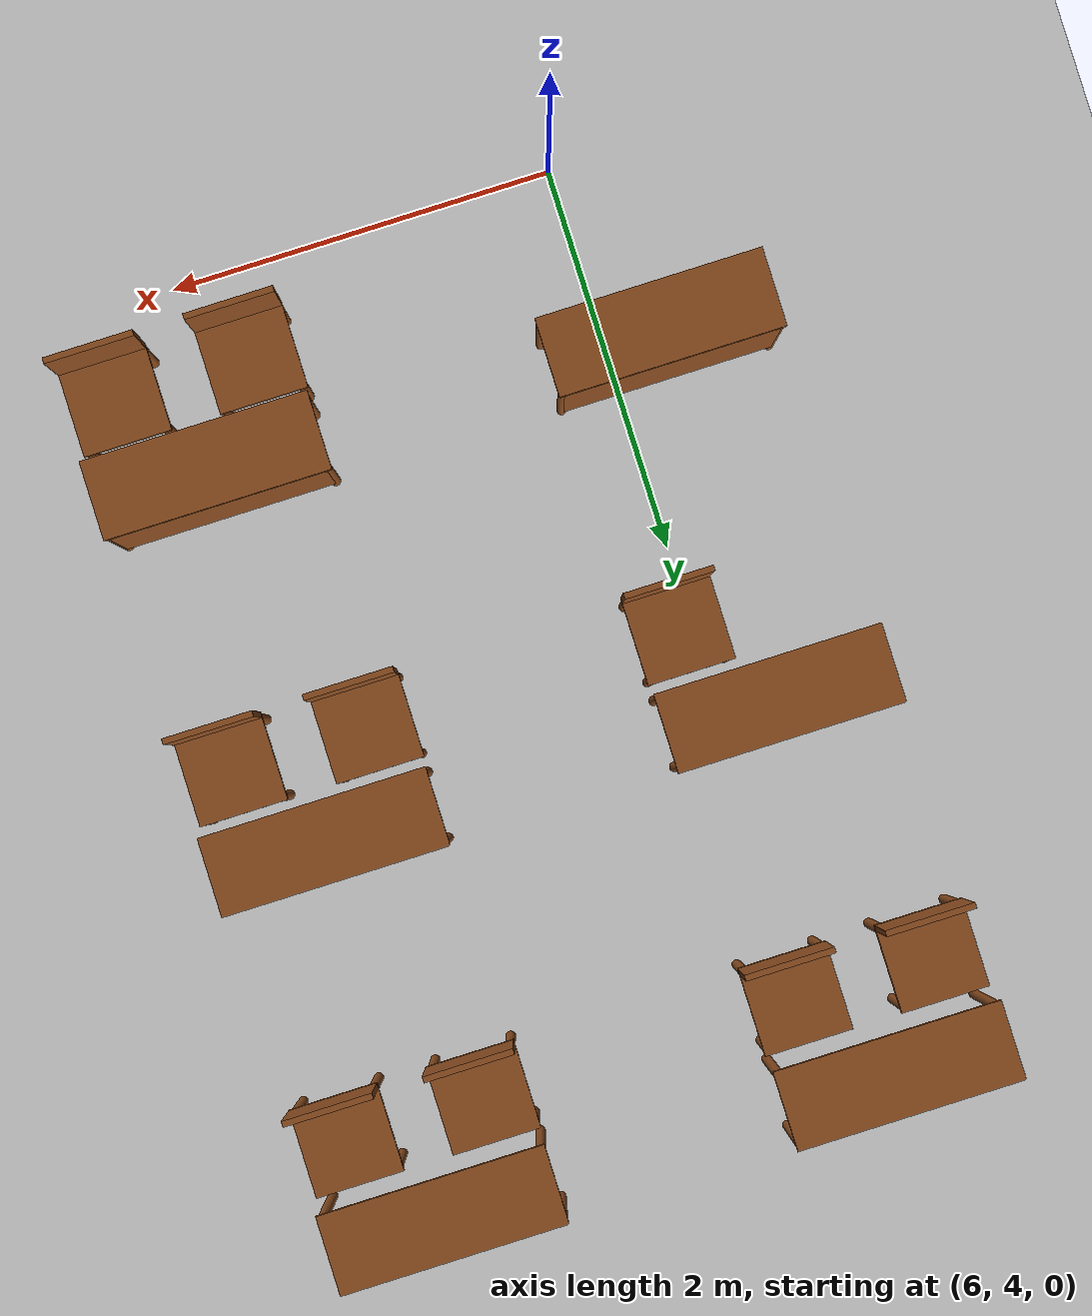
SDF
<sdf version="1.6">
 <world name="lecture_hall">
  <include><uri>model://ground_plane</uri></include>
  <include><uri>model://sun</uri></include>
  <model name="desk_1_3">
   <static>true</static>
   <pose>5.750 8.800 0 0 0 0</pose>
   <link name="link">
    <collision name="c_leg0">
     <pose>-0.550 -0.175 0.345 0 0 0</pose>
     <geometry><cylinder><radius>0.025</radius><length>0.690</length></cylinder></geometry>
    </collision>
    <visual name="v_leg0">
     <pose>-0.550 -0.175 0.345 0 0 0</pose>
     <geometry><cylinder><radius>0.025</radius><length>0.690</length></cylinder></geometry>
     <material><ambient>0.45 0.25 0.1 1</ambient><diffuse>0.55 0.3 0.12 1</diffuse></material>
    </visual>
    <collision name="c_leg1">
     <pose>-0.550 0.175 0.345 0 0 0</pose>
     <geometry><cylinder><radius>0.025</radius><length>0.690</length></cylinder></geometry>
    </collision>
    <visual name="v_leg1">
     <pose>-0.550 0.175 0.345 0 0 0</pose>
     <geometry><cylinder><radius>0.025</radius><length>0.690</length></cylinder></geometry>
     <material><ambient>0.45 0.25 0.1 1</ambient><diffuse>0.55 0.3 0.12 1</diffuse></material>
    </visual>
    <collision name="c_leg2">
     <pose>0.550 -0.175 0.345 0 0 0</pose>
     <geometry><cylinder><radius>0.025</radius><length>0.690</length></cylinder></geometry>
    </collision>
    <visual name="v_leg2">
     <pose>0.550 -0.175 0.345 0 0 0</pose>
     <geometry><cylinder><radius>0.025</radius><length>0.690</length></cylinder></geometry>
     <material><ambient>0.45 0.25 0.1 1</ambient><diffuse>0.55 0.3 0.12 1</diffuse></material>
    </visual>
    <collision name="c_leg3">
     <pose>0.550 0.175 0.345 0 0 0</pose>
     <geometry><cylinder><radius>0.025</radius><length>0.690</length></cylinder></geometry>
    </collision>
    <visual name="v_leg3">
     <pose>0.550 0.175 0.345 0 0 0</pose>
     <geometry><cylinder><radius>0.025</radius><length>0.690</length></cylinder></geometry>
     <material><ambient>0.45 0.25 0.1 1</ambient><diffuse>0.55 0.3 0.12 1</diffuse></material>
    </visual>
    <collision name="c_top">
     <pose>0.000 0.000 0.705 0 0 0</pose>
     <geometry><box><size>1.150 0.400 0.030</size></box></geometry>
    </collision>
    <visual name="v_top">
     <pose>0.000 0.000 0.705 0 0 0</pose>
     <geometry><box><size>1.150 0.400 0.030</size></box></geometry>
     <material><ambient>0.45 0.25 0.1 1</ambient><diffuse>0.55 0.3 0.12 1</diffuse></material>
    </visual>
    <collision name="c_panel">
     <pose>0.000 0.190 0.395 0 0 0</pose>
     <geometry><box><size>1.100 0.020 0.590</size></box></geometry>
    </collision>
    <visual name="v_panel">
     <pose>0.000 0.190 0.395 0 0 0</pose>
     <geometry><box><size>1.100 0.020 0.590</size></box></geometry>
     <material><ambient>0.45 0.25 0.1 1</ambient><diffuse>0.55 0.3 0.12 1</diffuse></material>
    </visual>
   </link>
  </model>
  <model name="chair_1_3_1">
   <static>true</static>
   <pose>5.400 8.325 0 0 0 0</pose>
   <link name="link">
    <collision name="c_leg0">
     <pose>-0.200 -0.200 0.225 0 0 0</pose>
     <geometry><cylinder><radius>0.025</radius><length>0.450</length></cylinder></geometry>
    </collision>
    <visual name="v_leg0">
     <pose>-0.200 -0.200 0.225 0 0 0</pose>
     <geometry><cylinder><radius>0.025</radius><length>0.450</length></cylinder></geometry>
     <material><ambient>0.45 0.25 0.1 1</ambient><diffuse>0.55 0.3 0.12 1</diffuse></material>
    </visual>
    <collision name="c_leg1">
     <pose>-0.200 0.200 0.225 0 0 0</pose>
     <geometry><cylinder><radius>0.025</radius><length>0.450</length></cylinder></geometry>
    </collision>
    <visual name="v_leg1">
     <pose>-0.200 0.200 0.225 0 0 0</pose>
     <geometry><cylinder><radius>0.025</radius><length>0.450</length></cylinder></geometry>
     <material><ambient>0.45 0.25 0.1 1</ambient><diffuse>0.55 0.3 0.12 1</diffuse></material>
    </visual>
    <collision name="c_leg2">
     <pose>0.200 -0.200 0.225 0 0 0</pose>
     <geometry><cylinder><radius>0.025</radius><length>0.450</length></cylinder></geometry>
    </collision>
    <visual name="v_leg2">
     <pose>0.200 -0.200 0.225 0 0 0</pose>
     <geometry><cylinder><radius>0.025</radius><length>0.450</length></cylinder></geometry>
     <material><ambient>0.45 0.25 0.1 1</ambient><diffuse>0.55 0.3 0.12 1</diffuse></material>
    </visual>
    <collision name="c_leg3">
     <pose>0.200 0.200 0.225 0 0 0</pose>
     <geometry><cylinder><radius>0.025</radius><length>0.450</length></cylinder></geometry>
    </collision>
    <visual name="v_leg3">
     <pose>0.200 0.200 0.225 0 0 0</pose>
     <geometry><cylinder><radius>0.025</radius><length>0.450</length></cylinder></geometry>
     <material><ambient>0.45 0.25 0.1 1</ambient><diffuse>0.55 0.3 0.12 1</diffuse></material>
    </visual>
    <collision name="c_seat">
     <pose>0.000 0.000 0.465 0 0 0</pose>
     <geometry><box><size>0.450 0.450 0.030</size></box></geometry>
    </collision>
    <visual name="v_seat">
     <pose>0.000 0.000 0.465 0 0 0</pose>
     <geometry><box><size>0.450 0.450 0.030</size></box></geometry>
     <material><ambient>0.45 0.25 0.1 1</ambient><diffuse>0.55 0.3 0.12 1</diffuse></material>
    </visual>
    <collision name="c_back">
     <pose>0.000 -0.210 0.680 0 0 0</pose>
     <geometry><box><size>0.450 0.030 0.400</size></box></geometry>
    </collision>
    <visual name="v_back">
     <pose>0.000 -0.210 0.680 0 0 0</pose>
     <geometry><box><size>0.450 0.030 0.400</size></box></geometry>
     <material><ambient>0.45 0.25 0.1 1</ambient><diffuse>0.55 0.3 0.12 1</diffuse></material>
    </visual>
   </link>
  </model>
  <model name="chair_1_3_2">
   <static>true</static>
   <pose>6.100 8.325 0 0 0 0</pose>
   <link name="link">
    <collision name="c_leg0">
     <pose>-0.200 -0.200 0.225 0 0 0</pose>
     <geometry><cylinder><radius>0.025</radius><length>0.450</length></cylinder></geometry>
    </collision>
    <visual name="v_leg0">
     <pose>-0.200 -0.200 0.225 0 0 0</pose>
     <geometry><cylinder><radius>0.025</radius><length>0.450</length></cylinder></geometry>
     <material><ambient>0.45 0.25 0.1 1</ambient><diffuse>0.55 0.3 0.12 1</diffuse></material>
    </visual>
    <collision name="c_leg1">
     <pose>-0.200 0.200 0.225 0 0 0</pose>
     <geometry><cylinder><radius>0.025</radius><length>0.450</length></cylinder></geometry>
    </collision>
    <visual name="v_leg1">
     <pose>-0.200 0.200 0.225 0 0 0</pose>
     <geometry><cylinder><radius>0.025</radius><length>0.450</length></cylinder></geometry>
     <material><ambient>0.45 0.25 0.1 1</ambient><diffuse>0.55 0.3 0.12 1</diffuse></material>
    </visual>
    <collision name="c_leg2">
     <pose>0.200 -0.200 0.225 0 0 0</pose>
     <geometry><cylinder><radius>0.025</radius><length>0.450</length></cylinder></geometry>
    </collision>
    <visual name="v_leg2">
     <pose>0.200 -0.200 0.225 0 0 0</pose>
     <geometry><cylinder><radius>0.025</radius><length>0.450</length></cylinder></geometry>
     <material><ambient>0.45 0.25 0.1 1</ambient><diffuse>0.55 0.3 0.12 1</diffuse></material>
    </visual>
    <collision name="c_leg3">
     <pose>0.200 0.200 0.225 0 0 0</pose>
     <geometry><cylinder><radius>0.025</radius><length>0.450</length></cylinder></geometry>
    </collision>
    <visual name="v_leg3">
     <pose>0.200 0.200 0.225 0 0 0</pose>
     <geometry><cylinder><radius>0.025</radius><length>0.450</length></cylinder></geometry>
     <material><ambient>0.45 0.25 0.1 1</ambient><diffuse>0.55 0.3 0.12 1</diffuse></material>
    </visual>
    <collision name="c_seat">
     <pose>0.000 0.000 0.465 0 0 0</pose>
     <geometry><box><size>0.450 0.450 0.030</size></box></geometry>
    </collision>
    <visual name="v_seat">
     <pose>0.000 0.000 0.465 0 0 0</pose>
     <geometry><box><size>0.450 0.450 0.030</size></box></geometry>
     <material><ambient>0.45 0.25 0.1 1</ambient><diffuse>0.55 0.3 0.12 1</diffuse></material>
    </visual>
    <collision name="c_back">
     <pose>0.000 -0.210 0.680 0 0 0</pose>
     <geometry><box><size>0.450 0.030 0.400</size></box></geometry>
    </collision>
    <visual name="v_back">
     <pose>0.000 -0.210 0.680 0 0 0</pose>
     <geometry><box><size>0.450 0.030 0.400</size></box></geometry>
     <material><ambient>0.45 0.25 0.1 1</ambient><diffuse>0.55 0.3 0.12 1</diffuse></material>
    </visual>
   </link>
  </model>
  <model name="desk_1_4">
   <static>true</static>
   <pose>8.050 8.800 0 0 0 0</pose>
   <link name="link">
    <collision name="c_leg0">
     <pose>-0.550 -0.175 0.345 0 0 0</pose>
     <geometry><cylinder><radius>0.025</radius><length>0.690</length></cylinder></geometry>
    </collision>
    <visual name="v_leg0">
     <pose>-0.550 -0.175 0.345 0 0 0</pose>
     <geometry><cylinder><radius>0.025</radius><length>0.690</length></cylinder></geometry>
     <material><ambient>0.45 0.25 0.1 1</ambient><diffuse>0.55 0.3 0.12 1</diffuse></material>
    </visual>
    <collision name="c_leg1">
     <pose>-0.550 0.175 0.345 0 0 0</pose>
     <geometry><cylinder><radius>0.025</radius><length>0.690</length></cylinder></geometry>
    </collision>
    <visual name="v_leg1">
     <pose>-0.550 0.175 0.345 0 0 0</pose>
     <geometry><cylinder><radius>0.025</radius><length>0.690</length></cylinder></geometry>
     <material><ambient>0.45 0.25 0.1 1</ambient><diffuse>0.55 0.3 0.12 1</diffuse></material>
    </visual>
    <collision name="c_leg2">
     <pose>0.550 -0.175 0.345 0 0 0</pose>
     <geometry><cylinder><radius>0.025</radius><length>0.690</length></cylinder></geometry>
    </collision>
    <visual name="v_leg2">
     <pose>0.550 -0.175 0.345 0 0 0</pose>
     <geometry><cylinder><radius>0.025</radius><length>0.690</length></cylinder></geometry>
     <material><ambient>0.45 0.25 0.1 1</ambient><diffuse>0.55 0.3 0.12 1</diffuse></material>
    </visual>
    <collision name="c_leg3">
     <pose>0.550 0.175 0.345 0 0 0</pose>
     <geometry><cylinder><radius>0.025</radius><length>0.690</length></cylinder></geometry>
    </collision>
    <visual name="v_leg3">
     <pose>0.550 0.175 0.345 0 0 0</pose>
     <geometry><cylinder><radius>0.025</radius><length>0.690</length></cylinder></geometry>
     <material><ambient>0.45 0.25 0.1 1</ambient><diffuse>0.55 0.3 0.12 1</diffuse></material>
    </visual>
    <collision name="c_top">
     <pose>0.000 0.000 0.705 0 0 0</pose>
     <geometry><box><size>1.150 0.400 0.030</size></box></geometry>
    </collision>
    <visual name="v_top">
     <pose>0.000 0.000 0.705 0 0 0</pose>
     <geometry><box><size>1.150 0.400 0.030</size></box></geometry>
     <material><ambient>0.45 0.25 0.1 1</ambient><diffuse>0.55 0.3 0.12 1</diffuse></material>
    </visual>
    <collision name="c_panel">
     <pose>0.000 0.190 0.395 0 0 0</pose>
     <geometry><box><size>1.100 0.020 0.590</size></box></geometry>
    </collision>
    <visual name="v_panel">
     <pose>0.000 0.190 0.395 0 0 0</pose>
     <geometry><box><size>1.100 0.020 0.590</size></box></geometry>
     <material><ambient>0.45 0.25 0.1 1</ambient><diffuse>0.55 0.3 0.12 1</diffuse></material>
    </visual>
   </link>
  </model>
  <model name="chair_1_4_1">
   <static>true</static>
   <pose>7.700 8.325 0 0 0 0</pose>
   <link name="link">
    <collision name="c_leg0">
     <pose>-0.200 -0.200 0.225 0 0 0</pose>
     <geometry><cylinder><radius>0.025</radius><length>0.450</length></cylinder></geometry>
    </collision>
    <visual name="v_leg0">
     <pose>-0.200 -0.200 0.225 0 0 0</pose>
     <geometry><cylinder><radius>0.025</radius><length>0.450</length></cylinder></geometry>
     <material><ambient>0.45 0.25 0.1 1</ambient><diffuse>0.55 0.3 0.12 1</diffuse></material>
    </visual>
    <collision name="c_leg1">
     <pose>-0.200 0.200 0.225 0 0 0</pose>
     <geometry><cylinder><radius>0.025</radius><length>0.450</length></cylinder></geometry>
    </collision>
    <visual name="v_leg1">
     <pose>-0.200 0.200 0.225 0 0 0</pose>
     <geometry><cylinder><radius>0.025</radius><length>0.450</length></cylinder></geometry>
     <material><ambient>0.45 0.25 0.1 1</ambient><diffuse>0.55 0.3 0.12 1</diffuse></material>
    </visual>
    <collision name="c_leg2">
     <pose>0.200 -0.200 0.225 0 0 0</pose>
     <geometry><cylinder><radius>0.025</radius><length>0.450</length></cylinder></geometry>
    </collision>
    <visual name="v_leg2">
     <pose>0.200 -0.200 0.225 0 0 0</pose>
     <geometry><cylinder><radius>0.025</radius><length>0.450</length></cylinder></geometry>
     <material><ambient>0.45 0.25 0.1 1</ambient><diffuse>0.55 0.3 0.12 1</diffuse></material>
    </visual>
    <collision name="c_leg3">
     <pose>0.200 0.200 0.225 0 0 0</pose>
     <geometry><cylinder><radius>0.025</radius><length>0.450</length></cylinder></geometry>
    </collision>
    <visual name="v_leg3">
     <pose>0.200 0.200 0.225 0 0 0</pose>
     <geometry><cylinder><radius>0.025</radius><length>0.450</length></cylinder></geometry>
     <material><ambient>0.45 0.25 0.1 1</ambient><diffuse>0.55 0.3 0.12 1</diffuse></material>
    </visual>
    <collision name="c_seat">
     <pose>0.000 0.000 0.465 0 0 0</pose>
     <geometry><box><size>0.450 0.450 0.030</size></box></geometry>
    </collision>
    <visual name="v_seat">
     <pose>0.000 0.000 0.465 0 0 0</pose>
     <geometry><box><size>0.450 0.450 0.030</size></box></geometry>
     <material><ambient>0.45 0.25 0.1 1</ambient><diffuse>0.55 0.3 0.12 1</diffuse></material>
    </visual>
    <collision name="c_back">
     <pose>0.000 -0.210 0.680 0 0 0</pose>
     <geometry><box><size>0.450 0.030 0.400</size></box></geometry>
    </collision>
    <visual name="v_back">
     <pose>0.000 -0.210 0.680 0 0 0</pose>
     <geometry><box><size>0.450 0.030 0.400</size></box></geometry>
     <material><ambient>0.45 0.25 0.1 1</ambient><diffuse>0.55 0.3 0.12 1</diffuse></material>
    </visual>
   </link>
  </model>
  <model name="chair_1_4_2">
   <static>true</static>
   <pose>8.400 8.325 0 0 0 0</pose>
   <link name="link">
    <collision name="c_leg0">
     <pose>-0.200 -0.200 0.225 0 0 0</pose>
     <geometry><cylinder><radius>0.025</radius><length>0.450</length></cylinder></geometry>
    </collision>
    <visual name="v_leg0">
     <pose>-0.200 -0.200 0.225 0 0 0</pose>
     <geometry><cylinder><radius>0.025</radius><length>0.450</length></cylinder></geometry>
     <material><ambient>0.45 0.25 0.1 1</ambient><diffuse>0.55 0.3 0.12 1</diffuse></material>
    </visual>
    <collision name="c_leg1">
     <pose>-0.200 0.200 0.225 0 0 0</pose>
     <geometry><cylinder><radius>0.025</radius><length>0.450</length></cylinder></geometry>
    </collision>
    <visual name="v_leg1">
     <pose>-0.200 0.200 0.225 0 0 0</pose>
     <geometry><cylinder><radius>0.025</radius><length>0.450</length></cylinder></geometry>
     <material><ambient>0.45 0.25 0.1 1</ambient><diffuse>0.55 0.3 0.12 1</diffuse></material>
    </visual>
    <collision name="c_leg2">
     <pose>0.200 -0.200 0.225 0 0 0</pose>
     <geometry><cylinder><radius>0.025</radius><length>0.450</length></cylinder></geometry>
    </collision>
    <visual name="v_leg2">
     <pose>0.200 -0.200 0.225 0 0 0</pose>
     <geometry><cylinder><radius>0.025</radius><length>0.450</length></cylinder></geometry>
     <material><ambient>0.45 0.25 0.1 1</ambient><diffuse>0.55 0.3 0.12 1</diffuse></material>
    </visual>
    <collision name="c_leg3">
     <pose>0.200 0.200 0.225 0 0 0</pose>
     <geometry><cylinder><radius>0.025</radius><length>0.450</length></cylinder></geometry>
    </collision>
    <visual name="v_leg3">
     <pose>0.200 0.200 0.225 0 0 0</pose>
     <geometry><cylinder><radius>0.025</radius><length>0.450</length></cylinder></geometry>
     <material><ambient>0.45 0.25 0.1 1</ambient><diffuse>0.55 0.3 0.12 1</diffuse></material>
    </visual>
    <collision name="c_seat">
     <pose>0.000 0.000 0.465 0 0 0</pose>
     <geometry><box><size>0.450 0.450 0.030</size></box></geometry>
    </collision>
    <visual name="v_seat">
     <pose>0.000 0.000 0.465 0 0 0</pose>
     <geometry><box><size>0.450 0.450 0.030</size></box></geometry>
     <material><ambient>0.45 0.25 0.1 1</ambient><diffuse>0.55 0.3 0.12 1</diffuse></material>
    </visual>
    <collision name="c_back">
     <pose>0.000 -0.210 0.680 0 0 0</pose>
     <geometry><box><size>0.450 0.030 0.400</size></box></geometry>
    </collision>
    <visual name="v_back">
     <pose>0.000 -0.210 0.680 0 0 0</pose>
     <geometry><box><size>0.450 0.030 0.400</size></box></geometry>
     <material><ambient>0.45 0.25 0.1 1</ambient><diffuse>0.55 0.3 0.12 1</diffuse></material>
    </visual>
   </link>
  </model>
  <model name="desk_2_3">
   <static>true</static>
   <pose>5.750 6.900 0 0 0 0</pose>
   <link name="link">
    <collision name="c_leg0">
     <pose>-0.550 -0.175 0.345 0 0 0</pose>
     <geometry><cylinder><radius>0.025</radius><length>0.690</length></cylinder></geometry>
    </collision>
    <visual name="v_leg0">
     <pose>-0.550 -0.175 0.345 0 0 0</pose>
     <geometry><cylinder><radius>0.025</radius><length>0.690</length></cylinder></geometry>
     <material><ambient>0.45 0.25 0.1 1</ambient><diffuse>0.55 0.3 0.12 1</diffuse></material>
    </visual>
    <collision name="c_leg1">
     <pose>-0.550 0.175 0.345 0 0 0</pose>
     <geometry><cylinder><radius>0.025</radius><length>0.690</length></cylinder></geometry>
    </collision>
    <visual name="v_leg1">
     <pose>-0.550 0.175 0.345 0 0 0</pose>
     <geometry><cylinder><radius>0.025</radius><length>0.690</length></cylinder></geometry>
     <material><ambient>0.45 0.25 0.1 1</ambient><diffuse>0.55 0.3 0.12 1</diffuse></material>
    </visual>
    <collision name="c_leg2">
     <pose>0.550 -0.175 0.345 0 0 0</pose>
     <geometry><cylinder><radius>0.025</radius><length>0.690</length></cylinder></geometry>
    </collision>
    <visual name="v_leg2">
     <pose>0.550 -0.175 0.345 0 0 0</pose>
     <geometry><cylinder><radius>0.025</radius><length>0.690</length></cylinder></geometry>
     <material><ambient>0.45 0.25 0.1 1</ambient><diffuse>0.55 0.3 0.12 1</diffuse></material>
    </visual>
    <collision name="c_leg3">
     <pose>0.550 0.175 0.345 0 0 0</pose>
     <geometry><cylinder><radius>0.025</radius><length>0.690</length></cylinder></geometry>
    </collision>
    <visual name="v_leg3">
     <pose>0.550 0.175 0.345 0 0 0</pose>
     <geometry><cylinder><radius>0.025</radius><length>0.690</length></cylinder></geometry>
     <material><ambient>0.45 0.25 0.1 1</ambient><diffuse>0.55 0.3 0.12 1</diffuse></material>
    </visual>
    <collision name="c_top">
     <pose>0.000 0.000 0.705 0 0 0</pose>
     <geometry><box><size>1.150 0.400 0.030</size></box></geometry>
    </collision>
    <visual name="v_top">
     <pose>0.000 0.000 0.705 0 0 0</pose>
     <geometry><box><size>1.150 0.400 0.030</size></box></geometry>
     <material><ambient>0.45 0.25 0.1 1</ambient><diffuse>0.55 0.3 0.12 1</diffuse></material>
    </visual>
    <collision name="c_panel">
     <pose>0.000 0.190 0.395 0 0 0</pose>
     <geometry><box><size>1.100 0.020 0.590</size></box></geometry>
    </collision>
    <visual name="v_panel">
     <pose>0.000 0.190 0.395 0 0 0</pose>
     <geometry><box><size>1.100 0.020 0.590</size></box></geometry>
     <material><ambient>0.45 0.25 0.1 1</ambient><diffuse>0.55 0.3 0.12 1</diffuse></material>
    </visual>
   </link>
  </model>
  <model name="chair_2_3_2">
   <static>true</static>
   <pose>6.100 6.425 0 0 0 0</pose>
   <link name="link">
    <collision name="c_leg0">
     <pose>-0.200 -0.200 0.225 0 0 0</pose>
     <geometry><cylinder><radius>0.025</radius><length>0.450</length></cylinder></geometry>
    </collision>
    <visual name="v_leg0">
     <pose>-0.200 -0.200 0.225 0 0 0</pose>
     <geometry><cylinder><radius>0.025</radius><length>0.450</length></cylinder></geometry>
     <material><ambient>0.45 0.25 0.1 1</ambient><diffuse>0.55 0.3 0.12 1</diffuse></material>
    </visual>
    <collision name="c_leg1">
     <pose>-0.200 0.200 0.225 0 0 0</pose>
     <geometry><cylinder><radius>0.025</radius><length>0.450</length></cylinder></geometry>
    </collision>
    <visual name="v_leg1">
     <pose>-0.200 0.200 0.225 0 0 0</pose>
     <geometry><cylinder><radius>0.025</radius><length>0.450</length></cylinder></geometry>
     <material><ambient>0.45 0.25 0.1 1</ambient><diffuse>0.55 0.3 0.12 1</diffuse></material>
    </visual>
    <collision name="c_leg2">
     <pose>0.200 -0.200 0.225 0 0 0</pose>
     <geometry><cylinder><radius>0.025</radius><length>0.450</length></cylinder></geometry>
    </collision>
    <visual name="v_leg2">
     <pose>0.200 -0.200 0.225 0 0 0</pose>
     <geometry><cylinder><radius>0.025</radius><length>0.450</length></cylinder></geometry>
     <material><ambient>0.45 0.25 0.1 1</ambient><diffuse>0.55 0.3 0.12 1</diffuse></material>
    </visual>
    <collision name="c_leg3">
     <pose>0.200 0.200 0.225 0 0 0</pose>
     <geometry><cylinder><radius>0.025</radius><length>0.450</length></cylinder></geometry>
    </collision>
    <visual name="v_leg3">
     <pose>0.200 0.200 0.225 0 0 0</pose>
     <geometry><cylinder><radius>0.025</radius><length>0.450</length></cylinder></geometry>
     <material><ambient>0.45 0.25 0.1 1</ambient><diffuse>0.55 0.3 0.12 1</diffuse></material>
    </visual>
    <collision name="c_seat">
     <pose>0.000 0.000 0.465 0 0 0</pose>
     <geometry><box><size>0.450 0.450 0.030</size></box></geometry>
    </collision>
    <visual name="v_seat">
     <pose>0.000 0.000 0.465 0 0 0</pose>
     <geometry><box><size>0.450 0.450 0.030</size></box></geometry>
     <material><ambient>0.45 0.25 0.1 1</ambient><diffuse>0.55 0.3 0.12 1</diffuse></material>
    </visual>
    <collision name="c_back">
     <pose>0.000 -0.210 0.680 0 0 0</pose>
     <geometry><box><size>0.450 0.030 0.400</size></box></geometry>
    </collision>
    <visual name="v_back">
     <pose>0.000 -0.210 0.680 0 0 0</pose>
     <geometry><box><size>0.450 0.030 0.400</size></box></geometry>
     <material><ambient>0.45 0.25 0.1 1</ambient><diffuse>0.55 0.3 0.12 1</diffuse></material>
    </visual>
   </link>
  </model>
  <model name="desk_2_4">
   <static>true</static>
   <pose>8.050 6.900 0 0 0 0</pose>
   <link name="link">
    <collision name="c_leg0">
     <pose>-0.550 -0.175 0.345 0 0 0</pose>
     <geometry><cylinder><radius>0.025</radius><length>0.690</length></cylinder></geometry>
    </collision>
    <visual name="v_leg0">
     <pose>-0.550 -0.175 0.345 0 0 0</pose>
     <geometry><cylinder><radius>0.025</radius><length>0.690</length></cylinder></geometry>
     <material><ambient>0.45 0.25 0.1 1</ambient><diffuse>0.55 0.3 0.12 1</diffuse></material>
    </visual>
    <collision name="c_leg1">
     <pose>-0.550 0.175 0.345 0 0 0</pose>
     <geometry><cylinder><radius>0.025</radius><length>0.690</length></cylinder></geometry>
    </collision>
    <visual name="v_leg1">
     <pose>-0.550 0.175 0.345 0 0 0</pose>
     <geometry><cylinder><radius>0.025</radius><length>0.690</length></cylinder></geometry>
     <material><ambient>0.45 0.25 0.1 1</ambient><diffuse>0.55 0.3 0.12 1</diffuse></material>
    </visual>
    <collision name="c_leg2">
     <pose>0.550 -0.175 0.345 0 0 0</pose>
     <geometry><cylinder><radius>0.025</radius><length>0.690</length></cylinder></geometry>
    </collision>
    <visual name="v_leg2">
     <pose>0.550 -0.175 0.345 0 0 0</pose>
     <geometry><cylinder><radius>0.025</radius><length>0.690</length></cylinder></geometry>
     <material><ambient>0.45 0.25 0.1 1</ambient><diffuse>0.55 0.3 0.12 1</diffuse></material>
    </visual>
    <collision name="c_leg3">
     <pose>0.550 0.175 0.345 0 0 0</pose>
     <geometry><cylinder><radius>0.025</radius><length>0.690</length></cylinder></geometry>
    </collision>
    <visual name="v_leg3">
     <pose>0.550 0.175 0.345 0 0 0</pose>
     <geometry><cylinder><radius>0.025</radius><length>0.690</length></cylinder></geometry>
     <material><ambient>0.45 0.25 0.1 1</ambient><diffuse>0.55 0.3 0.12 1</diffuse></material>
    </visual>
    <collision name="c_top">
     <pose>0.000 0.000 0.705 0 0 0</pose>
     <geometry><box><size>1.150 0.400 0.030</size></box></geometry>
    </collision>
    <visual name="v_top">
     <pose>0.000 0.000 0.705 0 0 0</pose>
     <geometry><box><size>1.150 0.400 0.030</size></box></geometry>
     <material><ambient>0.45 0.25 0.1 1</ambient><diffuse>0.55 0.3 0.12 1</diffuse></material>
    </visual>
    <collision name="c_panel">
     <pose>0.000 0.190 0.395 0 0 0</pose>
     <geometry><box><size>1.100 0.020 0.590</size></box></geometry>
    </collision>
    <visual name="v_panel">
     <pose>0.000 0.190 0.395 0 0 0</pose>
     <geometry><box><size>1.100 0.020 0.590</size></box></geometry>
     <material><ambient>0.45 0.25 0.1 1</ambient><diffuse>0.55 0.3 0.12 1</diffuse></material>
    </visual>
   </link>
  </model>
  <model name="chair_2_4_1">
   <static>true</static>
   <pose>7.700 6.425 0 0 0 0</pose>
   <link name="link">
    <collision name="c_leg0">
     <pose>-0.200 -0.200 0.225 0 0 0</pose>
     <geometry><cylinder><radius>0.025</radius><length>0.450</length></cylinder></geometry>
    </collision>
    <visual name="v_leg0">
     <pose>-0.200 -0.200 0.225 0 0 0</pose>
     <geometry><cylinder><radius>0.025</radius><length>0.450</length></cylinder></geometry>
     <material><ambient>0.45 0.25 0.1 1</ambient><diffuse>0.55 0.3 0.12 1</diffuse></material>
    </visual>
    <collision name="c_leg1">
     <pose>-0.200 0.200 0.225 0 0 0</pose>
     <geometry><cylinder><radius>0.025</radius><length>0.450</length></cylinder></geometry>
    </collision>
    <visual name="v_leg1">
     <pose>-0.200 0.200 0.225 0 0 0</pose>
     <geometry><cylinder><radius>0.025</radius><length>0.450</length></cylinder></geometry>
     <material><ambient>0.45 0.25 0.1 1</ambient><diffuse>0.55 0.3 0.12 1</diffuse></material>
    </visual>
    <collision name="c_leg2">
     <pose>0.200 -0.200 0.225 0 0 0</pose>
     <geometry><cylinder><radius>0.025</radius><length>0.450</length></cylinder></geometry>
    </collision>
    <visual name="v_leg2">
     <pose>0.200 -0.200 0.225 0 0 0</pose>
     <geometry><cylinder><radius>0.025</radius><length>0.450</length></cylinder></geometry>
     <material><ambient>0.45 0.25 0.1 1</ambient><diffuse>0.55 0.3 0.12 1</diffuse></material>
    </visual>
    <collision name="c_leg3">
     <pose>0.200 0.200 0.225 0 0 0</pose>
     <geometry><cylinder><radius>0.025</radius><length>0.450</length></cylinder></geometry>
    </collision>
    <visual name="v_leg3">
     <pose>0.200 0.200 0.225 0 0 0</pose>
     <geometry><cylinder><radius>0.025</radius><length>0.450</length></cylinder></geometry>
     <material><ambient>0.45 0.25 0.1 1</ambient><diffuse>0.55 0.3 0.12 1</diffuse></material>
    </visual>
    <collision name="c_seat">
     <pose>0.000 0.000 0.465 0 0 0</pose>
     <geometry><box><size>0.450 0.450 0.030</size></box></geometry>
    </collision>
    <visual name="v_seat">
     <pose>0.000 0.000 0.465 0 0 0</pose>
     <geometry><box><size>0.450 0.450 0.030</size></box></geometry>
     <material><ambient>0.45 0.25 0.1 1</ambient><diffuse>0.55 0.3 0.12 1</diffuse></material>
    </visual>
    <collision name="c_back">
     <pose>0.000 -0.210 0.680 0 0 0</pose>
     <geometry><box><size>0.450 0.030 0.400</size></box></geometry>
    </collision>
    <visual name="v_back">
     <pose>0.000 -0.210 0.680 0 0 0</pose>
     <geometry><box><size>0.450 0.030 0.400</size></box></geometry>
     <material><ambient>0.45 0.25 0.1 1</ambient><diffuse>0.55 0.3 0.12 1</diffuse></material>
    </visual>
   </link>
  </model>
  <model name="chair_2_4_2">
   <static>true</static>
   <pose>8.400 6.425 0 0 0 0</pose>
   <link name="link">
    <collision name="c_leg0">
     <pose>-0.200 -0.200 0.225 0 0 0</pose>
     <geometry><cylinder><radius>0.025</radius><length>0.450</length></cylinder></geometry>
    </collision>
    <visual name="v_leg0">
     <pose>-0.200 -0.200 0.225 0 0 0</pose>
     <geometry><cylinder><radius>0.025</radius><length>0.450</length></cylinder></geometry>
     <material><ambient>0.45 0.25 0.1 1</ambient><diffuse>0.55 0.3 0.12 1</diffuse></material>
    </visual>
    <collision name="c_leg1">
     <pose>-0.200 0.200 0.225 0 0 0</pose>
     <geometry><cylinder><radius>0.025</radius><length>0.450</length></cylinder></geometry>
    </collision>
    <visual name="v_leg1">
     <pose>-0.200 0.200 0.225 0 0 0</pose>
     <geometry><cylinder><radius>0.025</radius><length>0.450</length></cylinder></geometry>
     <material><ambient>0.45 0.25 0.1 1</ambient><diffuse>0.55 0.3 0.12 1</diffuse></material>
    </visual>
    <collision name="c_leg2">
     <pose>0.200 -0.200 0.225 0 0 0</pose>
     <geometry><cylinder><radius>0.025</radius><length>0.450</length></cylinder></geometry>
    </collision>
    <visual name="v_leg2">
     <pose>0.200 -0.200 0.225 0 0 0</pose>
     <geometry><cylinder><radius>0.025</radius><length>0.450</length></cylinder></geometry>
     <material><ambient>0.45 0.25 0.1 1</ambient><diffuse>0.55 0.3 0.12 1</diffuse></material>
    </visual>
    <collision name="c_leg3">
     <pose>0.200 0.200 0.225 0 0 0</pose>
     <geometry><cylinder><radius>0.025</radius><length>0.450</length></cylinder></geometry>
    </collision>
    <visual name="v_leg3">
     <pose>0.200 0.200 0.225 0 0 0</pose>
     <geometry><cylinder><radius>0.025</radius><length>0.450</length></cylinder></geometry>
     <material><ambient>0.45 0.25 0.1 1</ambient><diffuse>0.55 0.3 0.12 1</diffuse></material>
    </visual>
    <collision name="c_seat">
     <pose>0.000 0.000 0.465 0 0 0</pose>
     <geometry><box><size>0.450 0.450 0.030</size></box></geometry>
    </collision>
    <visual name="v_seat">
     <pose>0.000 0.000 0.465 0 0 0</pose>
     <geometry><box><size>0.450 0.450 0.030</size></box></geometry>
     <material><ambient>0.45 0.25 0.1 1</ambient><diffuse>0.55 0.3 0.12 1</diffuse></material>
    </visual>
    <collision name="c_back">
     <pose>0.000 -0.210 0.680 0 0 0</pose>
     <geometry><box><size>0.450 0.030 0.400</size></box></geometry>
    </collision>
    <visual name="v_back">
     <pose>0.000 -0.210 0.680 0 0 0</pose>
     <geometry><box><size>0.450 0.030 0.400</size></box></geometry>
     <material><ambient>0.45 0.25 0.1 1</ambient><diffuse>0.55 0.3 0.12 1</diffuse></material>
    </visual>
   </link>
  </model>
  <model name="desk_3_3">
   <static>true</static>
   <pose>5.750 5.000 0 0 0 0</pose>
   <link name="link">
    <collision name="c_leg0">
     <pose>-0.550 -0.175 0.345 0 0 0</pose>
     <geometry><cylinder><radius>0.025</radius><length>0.690</length></cylinder></geometry>
    </collision>
    <visual name="v_leg0">
     <pose>-0.550 -0.175 0.345 0 0 0</pose>
     <geometry><cylinder><radius>0.025</radius><length>0.690</length></cylinder></geometry>
     <material><ambient>0.45 0.25 0.1 1</ambient><diffuse>0.55 0.3 0.12 1</diffuse></material>
    </visual>
    <collision name="c_leg1">
     <pose>-0.550 0.175 0.345 0 0 0</pose>
     <geometry><cylinder><radius>0.025</radius><length>0.690</length></cylinder></geometry>
    </collision>
    <visual name="v_leg1">
     <pose>-0.550 0.175 0.345 0 0 0</pose>
     <geometry><cylinder><radius>0.025</radius><length>0.690</length></cylinder></geometry>
     <material><ambient>0.45 0.25 0.1 1</ambient><diffuse>0.55 0.3 0.12 1</diffuse></material>
    </visual>
    <collision name="c_leg2">
     <pose>0.550 -0.175 0.345 0 0 0</pose>
     <geometry><cylinder><radius>0.025</radius><length>0.690</length></cylinder></geometry>
    </collision>
    <visual name="v_leg2">
     <pose>0.550 -0.175 0.345 0 0 0</pose>
     <geometry><cylinder><radius>0.025</radius><length>0.690</length></cylinder></geometry>
     <material><ambient>0.45 0.25 0.1 1</ambient><diffuse>0.55 0.3 0.12 1</diffuse></material>
    </visual>
    <collision name="c_leg3">
     <pose>0.550 0.175 0.345 0 0 0</pose>
     <geometry><cylinder><radius>0.025</radius><length>0.690</length></cylinder></geometry>
    </collision>
    <visual name="v_leg3">
     <pose>0.550 0.175 0.345 0 0 0</pose>
     <geometry><cylinder><radius>0.025</radius><length>0.690</length></cylinder></geometry>
     <material><ambient>0.45 0.25 0.1 1</ambient><diffuse>0.55 0.3 0.12 1</diffuse></material>
    </visual>
    <collision name="c_top">
     <pose>0.000 0.000 0.705 0 0 0</pose>
     <geometry><box><size>1.150 0.400 0.030</size></box></geometry>
    </collision>
    <visual name="v_top">
     <pose>0.000 0.000 0.705 0 0 0</pose>
     <geometry><box><size>1.150 0.400 0.030</size></box></geometry>
     <material><ambient>0.45 0.25 0.1 1</ambient><diffuse>0.55 0.3 0.12 1</diffuse></material>
    </visual>
    <collision name="c_panel">
     <pose>0.000 0.190 0.395 0 0 0</pose>
     <geometry><box><size>1.100 0.020 0.590</size></box></geometry>
    </collision>
    <visual name="v_panel">
     <pose>0.000 0.190 0.395 0 0 0</pose>
     <geometry><box><size>1.100 0.020 0.590</size></box></geometry>
     <material><ambient>0.45 0.25 0.1 1</ambient><diffuse>0.55 0.3 0.12 1</diffuse></material>
    </visual>
   </link>
  </model>
  <model name="desk_3_4">
   <static>true</static>
   <pose>8.050 5.000 0 0 0 0</pose>
   <link name="link">
    <collision name="c_leg0">
     <pose>-0.550 -0.175 0.345 0 0 0</pose>
     <geometry><cylinder><radius>0.025</radius><length>0.690</length></cylinder></geometry>
    </collision>
    <visual name="v_leg0">
     <pose>-0.550 -0.175 0.345 0 0 0</pose>
     <geometry><cylinder><radius>0.025</radius><length>0.690</length></cylinder></geometry>
     <material><ambient>0.45 0.25 0.1 1</ambient><diffuse>0.55 0.3 0.12 1</diffuse></material>
    </visual>
    <collision name="c_leg1">
     <pose>-0.550 0.175 0.345 0 0 0</pose>
     <geometry><cylinder><radius>0.025</radius><length>0.690</length></cylinder></geometry>
    </collision>
    <visual name="v_leg1">
     <pose>-0.550 0.175 0.345 0 0 0</pose>
     <geometry><cylinder><radius>0.025</radius><length>0.690</length></cylinder></geometry>
     <material><ambient>0.45 0.25 0.1 1</ambient><diffuse>0.55 0.3 0.12 1</diffuse></material>
    </visual>
    <collision name="c_leg2">
     <pose>0.550 -0.175 0.345 0 0 0</pose>
     <geometry><cylinder><radius>0.025</radius><length>0.690</length></cylinder></geometry>
    </collision>
    <visual name="v_leg2">
     <pose>0.550 -0.175 0.345 0 0 0</pose>
     <geometry><cylinder><radius>0.025</radius><length>0.690</length></cylinder></geometry>
     <material><ambient>0.45 0.25 0.1 1</ambient><diffuse>0.55 0.3 0.12 1</diffuse></material>
    </visual>
    <collision name="c_leg3">
     <pose>0.550 0.175 0.345 0 0 0</pose>
     <geometry><cylinder><radius>0.025</radius><length>0.690</length></cylinder></geometry>
    </collision>
    <visual name="v_leg3">
     <pose>0.550 0.175 0.345 0 0 0</pose>
     <geometry><cylinder><radius>0.025</radius><length>0.690</length></cylinder></geometry>
     <material><ambient>0.45 0.25 0.1 1</ambient><diffuse>0.55 0.3 0.12 1</diffuse></material>
    </visual>
    <collision name="c_top">
     <pose>0.000 0.000 0.705 0 0 0</pose>
     <geometry><box><size>1.150 0.400 0.030</size></box></geometry>
    </collision>
    <visual name="v_top">
     <pose>0.000 0.000 0.705 0 0 0</pose>
     <geometry><box><size>1.150 0.400 0.030</size></box></geometry>
     <material><ambient>0.45 0.25 0.1 1</ambient><diffuse>0.55 0.3 0.12 1</diffuse></material>
    </visual>
    <collision name="c_panel">
     <pose>0.000 0.190 0.395 0 0 0</pose>
     <geometry><box><size>1.100 0.020 0.590</size></box></geometry>
    </collision>
    <visual name="v_panel">
     <pose>0.000 0.190 0.395 0 0 0</pose>
     <geometry><box><size>1.100 0.020 0.590</size></box></geometry>
     <material><ambient>0.45 0.25 0.1 1</ambient><diffuse>0.55 0.3 0.12 1</diffuse></material>
    </visual>
   </link>
  </model>
  <model name="chair_3_4_1">
   <static>true</static>
   <pose>7.700 4.525 0 0 0 0</pose>
   <link name="link">
    <collision name="c_leg0">
     <pose>-0.200 -0.200 0.225 0 0 0</pose>
     <geometry><cylinder><radius>0.025</radius><length>0.450</length></cylinder></geometry>
    </collision>
    <visual name="v_leg0">
     <pose>-0.200 -0.200 0.225 0 0 0</pose>
     <geometry><cylinder><radius>0.025</radius><length>0.450</length></cylinder></geometry>
     <material><ambient>0.45 0.25 0.1 1</ambient><diffuse>0.55 0.3 0.12 1</diffuse></material>
    </visual>
    <collision name="c_leg1">
     <pose>-0.200 0.200 0.225 0 0 0</pose>
     <geometry><cylinder><radius>0.025</radius><length>0.450</length></cylinder></geometry>
    </collision>
    <visual name="v_leg1">
     <pose>-0.200 0.200 0.225 0 0 0</pose>
     <geometry><cylinder><radius>0.025</radius><length>0.450</length></cylinder></geometry>
     <material><ambient>0.45 0.25 0.1 1</ambient><diffuse>0.55 0.3 0.12 1</diffuse></material>
    </visual>
    <collision name="c_leg2">
     <pose>0.200 -0.200 0.225 0 0 0</pose>
     <geometry><cylinder><radius>0.025</radius><length>0.450</length></cylinder></geometry>
    </collision>
    <visual name="v_leg2">
     <pose>0.200 -0.200 0.225 0 0 0</pose>
     <geometry><cylinder><radius>0.025</radius><length>0.450</length></cylinder></geometry>
     <material><ambient>0.45 0.25 0.1 1</ambient><diffuse>0.55 0.3 0.12 1</diffuse></material>
    </visual>
    <collision name="c_leg3">
     <pose>0.200 0.200 0.225 0 0 0</pose>
     <geometry><cylinder><radius>0.025</radius><length>0.450</length></cylinder></geometry>
    </collision>
    <visual name="v_leg3">
     <pose>0.200 0.200 0.225 0 0 0</pose>
     <geometry><cylinder><radius>0.025</radius><length>0.450</length></cylinder></geometry>
     <material><ambient>0.45 0.25 0.1 1</ambient><diffuse>0.55 0.3 0.12 1</diffuse></material>
    </visual>
    <collision name="c_seat">
     <pose>0.000 0.000 0.465 0 0 0</pose>
     <geometry><box><size>0.450 0.450 0.030</size></box></geometry>
    </collision>
    <visual name="v_seat">
     <pose>0.000 0.000 0.465 0 0 0</pose>
     <geometry><box><size>0.450 0.450 0.030</size></box></geometry>
     <material><ambient>0.45 0.25 0.1 1</ambient><diffuse>0.55 0.3 0.12 1</diffuse></material>
    </visual>
    <collision name="c_back">
     <pose>0.000 -0.210 0.680 0 0 0</pose>
     <geometry><box><size>0.450 0.030 0.400</size></box></geometry>
    </collision>
    <visual name="v_back">
     <pose>0.000 -0.210 0.680 0 0 0</pose>
     <geometry><box><size>0.450 0.030 0.400</size></box></geometry>
     <material><ambient>0.45 0.25 0.1 1</ambient><diffuse>0.55 0.3 0.12 1</diffuse></material>
    </visual>
   </link>
  </model>
  <model name="chair_3_4_2">
   <static>true</static>
   <pose>8.400 4.525 0 0 0 0</pose>
   <link name="link">
    <collision name="c_leg0">
     <pose>-0.200 -0.200 0.225 0 0 0</pose>
     <geometry><cylinder><radius>0.025</radius><length>0.450</length></cylinder></geometry>
    </collision>
    <visual name="v_leg0">
     <pose>-0.200 -0.200 0.225 0 0 0</pose>
     <geometry><cylinder><radius>0.025</radius><length>0.450</length></cylinder></geometry>
     <material><ambient>0.45 0.25 0.1 1</ambient><diffuse>0.55 0.3 0.12 1</diffuse></material>
    </visual>
    <collision name="c_leg1">
     <pose>-0.200 0.200 0.225 0 0 0</pose>
     <geometry><cylinder><radius>0.025</radius><length>0.450</length></cylinder></geometry>
    </collision>
    <visual name="v_leg1">
     <pose>-0.200 0.200 0.225 0 0 0</pose>
     <geometry><cylinder><radius>0.025</radius><length>0.450</length></cylinder></geometry>
     <material><ambient>0.45 0.25 0.1 1</ambient><diffuse>0.55 0.3 0.12 1</diffuse></material>
    </visual>
    <collision name="c_leg2">
     <pose>0.200 -0.200 0.225 0 0 0</pose>
     <geometry><cylinder><radius>0.025</radius><length>0.450</length></cylinder></geometry>
    </collision>
    <visual name="v_leg2">
     <pose>0.200 -0.200 0.225 0 0 0</pose>
     <geometry><cylinder><radius>0.025</radius><length>0.450</length></cylinder></geometry>
     <material><ambient>0.45 0.25 0.1 1</ambient><diffuse>0.55 0.3 0.12 1</diffuse></material>
    </visual>
    <collision name="c_leg3">
     <pose>0.200 0.200 0.225 0 0 0</pose>
     <geometry><cylinder><radius>0.025</radius><length>0.450</length></cylinder></geometry>
    </collision>
    <visual name="v_leg3">
     <pose>0.200 0.200 0.225 0 0 0</pose>
     <geometry><cylinder><radius>0.025</radius><length>0.450</length></cylinder></geometry>
     <material><ambient>0.45 0.25 0.1 1</ambient><diffuse>0.55 0.3 0.12 1</diffuse></material>
    </visual>
    <collision name="c_seat">
     <pose>0.000 0.000 0.465 0 0 0</pose>
     <geometry><box><size>0.450 0.450 0.030</size></box></geometry>
    </collision>
    <visual name="v_seat">
     <pose>0.000 0.000 0.465 0 0 0</pose>
     <geometry><box><size>0.450 0.450 0.030</size></box></geometry>
     <material><ambient>0.45 0.25 0.1 1</ambient><diffuse>0.55 0.3 0.12 1</diffuse></material>
    </visual>
    <collision name="c_back">
     <pose>0.000 -0.210 0.680 0 0 0</pose>
     <geometry><box><size>0.450 0.030 0.400</size></box></geometry>
    </collision>
    <visual name="v_back">
     <pose>0.000 -0.210 0.680 0 0 0</pose>
     <geometry><box><size>0.450 0.030 0.400</size></box></geometry>
     <material><ambient>0.45 0.25 0.1 1</ambient><diffuse>0.55 0.3 0.12 1</diffuse></material>
    </visual>
   </link>
  </model>
 </world>
</sdf>
